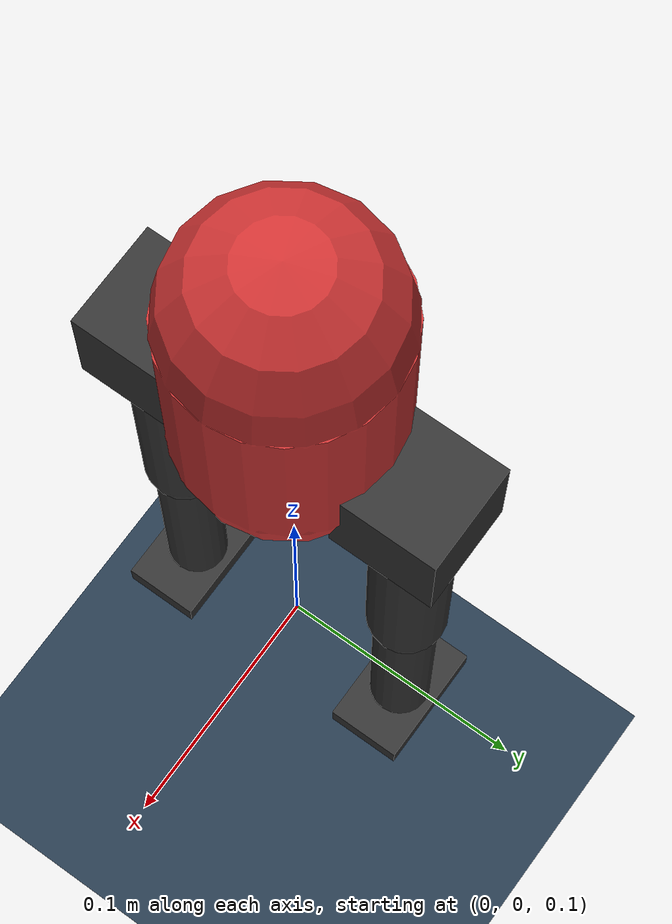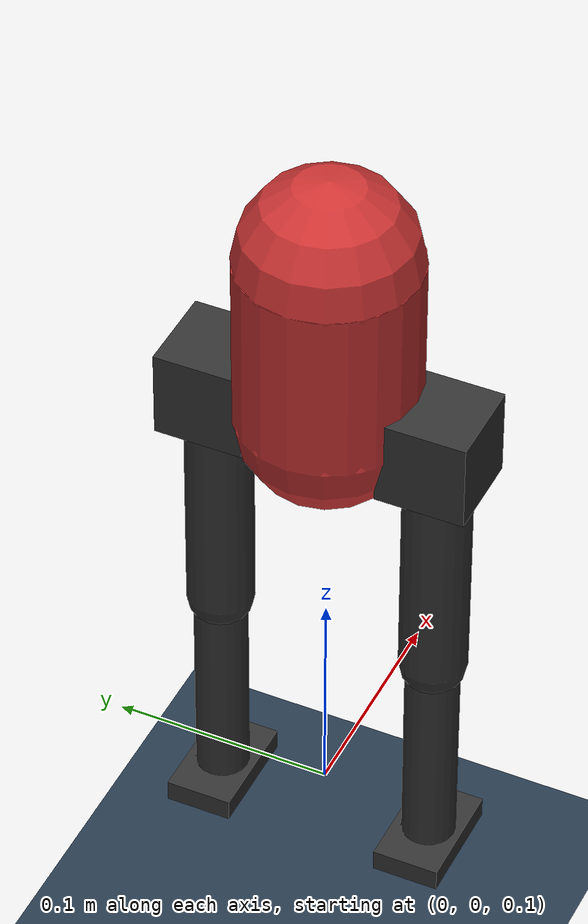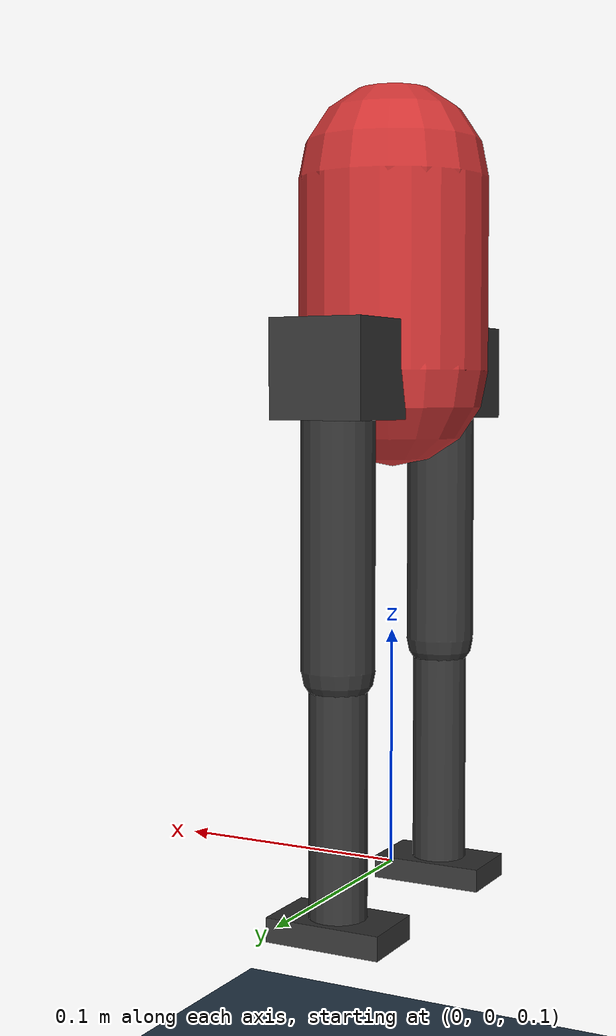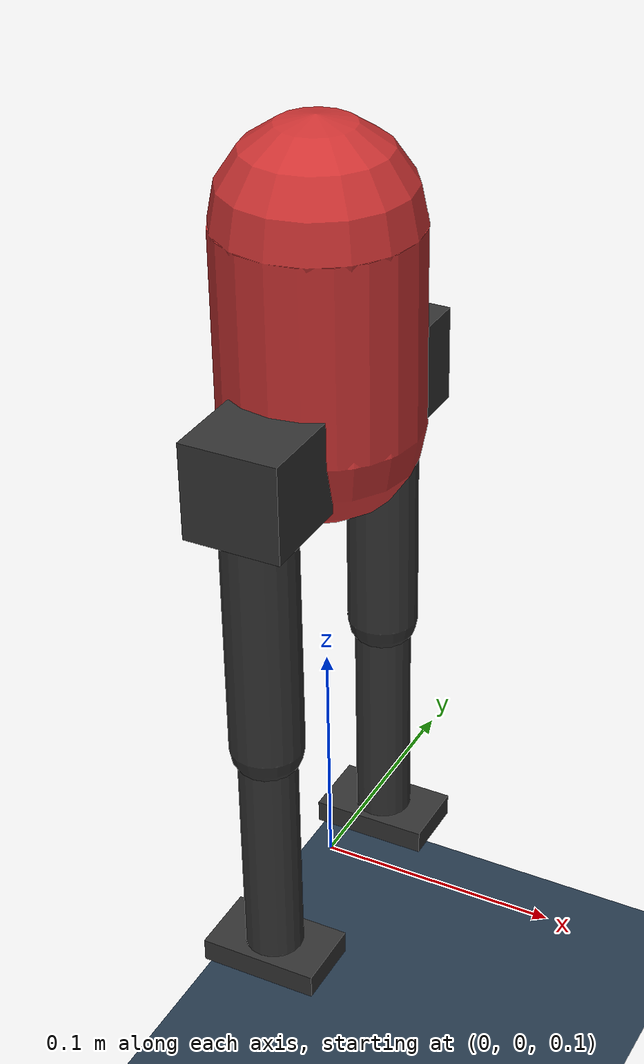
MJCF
<mujoco model="nadir">
  <compiler angle="radian" meshdir="meshes/" />

  <option timestep="0.002" iterations="50" solver="CG" tolerance="1e-4" />

  <default>
    <joint damping="0.1" armature="0.001" />
  </default>

  <asset>
    <texture type="skybox" builtin="gradient" rgb1="0.3 0.5 0.7" rgb2="0 0 0" width="512" height="512" />
    <texture name="texplane" type="2d" builtin="checker" rgb1=".2 .3 .4" rgb2=".1 0.15 0.2" width="512" height="512" mark="cross" markrgb=".8 .8 .8" />
    <material name="matplane" reflectance="0.3" texture="texplane" texrepeat="1 1" texuniform="true" />
    <material name="robot_mat" rgba="0.2 0.2 0.2 1" />
  </asset>

  <worldbody>
    <light directional="true" diffuse=".8 .8 .8" specular=".2 .2 .2" pos="0 0 5" dir="0 0 -1" />
    <geom name="floor" type="plane" size="0 0 1" material="matplane" condim="3" />

    <body name="torso" pos="0 0 0.35">
      <freejoint name="root" />
      <geom name="torso_geom" type="capsule" size="0.04 0.04" rgba="0.8 0.2 0.2 1" mass="0.5" />
      <site name="imu_site" pos="0 0 0" size="0.01" />
      <camera name="tracking_cam" pos="0 -1.5 0.5" xyaxes="1 0 0 0 1 2" mode="trackcom" />

      <!-- Right Leg -->
      <body name="hip_bracket_r" pos="0 -0.05 -0.04">
        <joint name="hip_pitch_r" type="hinge" axis="0 1 0" range="-1.2 1.2" />
        <geom type="box" size="0.02 0.02 0.02" mass="0.05" material="robot_mat" />

        <body name="upper_leg_r" pos="0 0 -0.02">
          <joint name="hip_roll_r" type="hinge" axis="1 0 0" range="-0.4 0.4" />
          <geom type="capsule" size="0.015 0.05" pos="0 0 -0.05" mass="0.15" material="robot_mat" />

          <body name="lower_leg_r" pos="0 0 -0.1">
            <joint name="knee_r" type="hinge" axis="0 1 0" range="-0.1 2.0" />
            <geom type="capsule" size="0.012 0.05" pos="0 0 -0.05" mass="0.12" material="robot_mat" />

            <body name="foot_r" pos="0 0 -0.1">
              <joint name="ankle_pitch_r" type="hinge" axis="0 1 0" range="-0.8 0.8" />
              <joint name="ankle_roll_r" type="hinge" axis="1 0 0" range="-0.3 0.3" />
              <geom type="box" size="0.025 0.015 0.005" pos="0 0 -0.005" mass="0.08" material="robot_mat" />
              <site name="foot_contact_r" pos="0 0 -0.01" size="0.01" type="sphere" rgba="0 1 0 0" />
            </body>
          </body>
        </body>
      </body>

      <!-- Left Leg -->
      <body name="hip_bracket_l" pos="0 0.05 -0.04">
        <joint name="hip_pitch_l" type="hinge" axis="0 1 0" range="-1.2 1.2" />
        <geom type="box" size="0.02 0.02 0.02" mass="0.05" material="robot_mat" />

        <body name="upper_leg_l" pos="0 0 -0.02">
          <joint name="hip_roll_l" type="hinge" axis="1 0 0" range="-0.4 0.4" />
          <geom type="capsule" size="0.015 0.05" pos="0 0 -0.05" mass="0.15" material="robot_mat" />

          <body name="lower_leg_l" pos="0 0 -0.1">
            <joint name="knee_l" type="hinge" axis="0 1 0" range="-0.1 2.0" />
            <geom type="capsule" size="0.012 0.05" pos="0 0 -0.05" mass="0.12" material="robot_mat" />

            <body name="foot_l" pos="0 0 -0.1">
              <joint name="ankle_pitch_l" type="hinge" axis="0 1 0" range="-0.8 0.8" />
              <joint name="ankle_roll_l" type="hinge" axis="1 0 0" range="-0.3 0.3" />
              <geom type="box" size="0.025 0.015 0.005" pos="0 0 -0.005" mass="0.08" material="robot_mat" />
              <site name="foot_contact_l" pos="0 0 -0.01" size="0.01" type="sphere" rgba="0 1 0 0" />
            </body>
          </body>
        </body>
      </body>

    </body>
  </worldbody>

  <actuator>
    <position name="hip_pitch_r" joint="hip_pitch_r" ctrlrange="-1 1" forcerange="-3 3" kp="40" kv="2" />
    <position name="hip_roll_r" joint="hip_roll_r" ctrlrange="-1 1" forcerange="-3 3" kp="40" kv="2" />
    <position name="knee_r" joint="knee_r" ctrlrange="-1 1" forcerange="-3 3" kp="40" kv="2" />
    <position name="ankle_pitch_r" joint="ankle_pitch_r" ctrlrange="-1 1" forcerange="-3 3" kp="40" kv="2" />
    <position name="ankle_roll_r" joint="ankle_roll_r" ctrlrange="-1 1" forcerange="-3 3" kp="40" kv="2" />
    <position name="hip_pitch_l" joint="hip_pitch_l" ctrlrange="-1 1" forcerange="-3 3" kp="40" kv="2" />
    <position name="hip_roll_l" joint="hip_roll_l" ctrlrange="-1 1" forcerange="-3 3" kp="40" kv="2" />
    <position name="knee_l" joint="knee_l" ctrlrange="-1 1" forcerange="-3 3" kp="40" kv="2" />
    <position name="ankle_pitch_l" joint="ankle_pitch_l" ctrlrange="-1 1" forcerange="-3 3" kp="40" kv="2" />
    <position name="ankle_roll_l" joint="ankle_roll_l" ctrlrange="-1 1" forcerange="-3 3" kp="40" kv="2" />
  </actuator>

  <sensor>
    <accelerometer name="accel" site="imu_site" />
    <gyro name="gyro" site="imu_site" />
    <touch name="touch_foot_r" site="foot_contact_r" />
    <touch name="touch_foot_l" site="foot_contact_l" />
  </sensor>
  <contact>
    <exclude body1="torso" body2="upper_leg_r" />
    <exclude body1="torso" body2="upper_leg_l" />
    <exclude body1="torso" body2="hip_bracket_r" />
    <exclude body1="torso" body2="hip_bracket_l" />
  </contact>
</mujoco>
